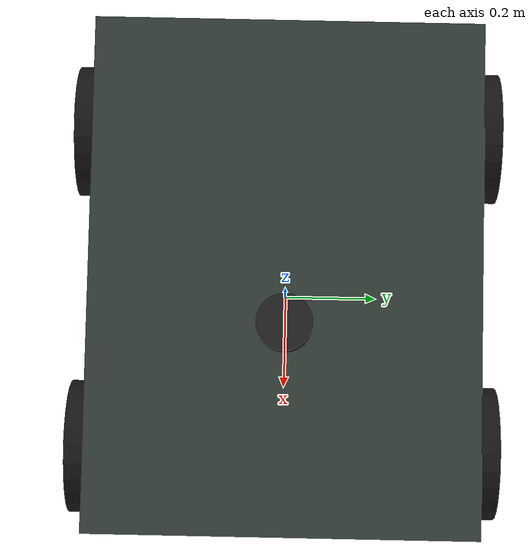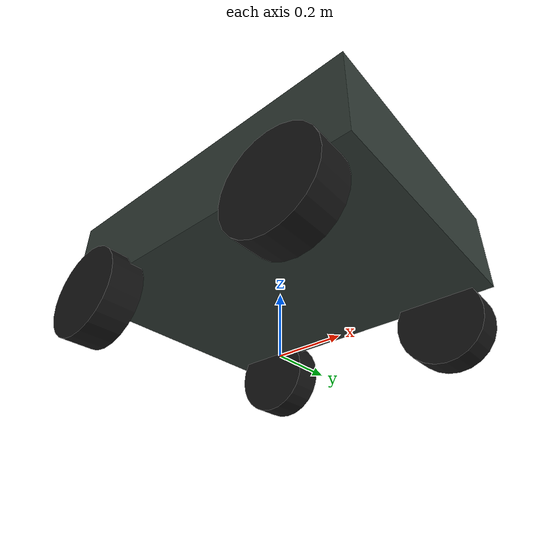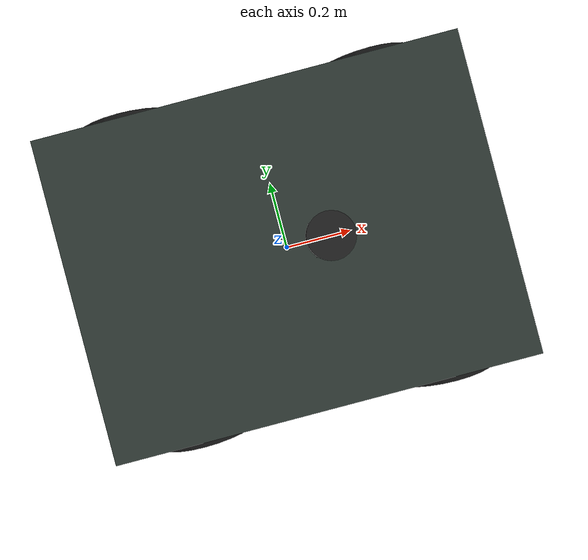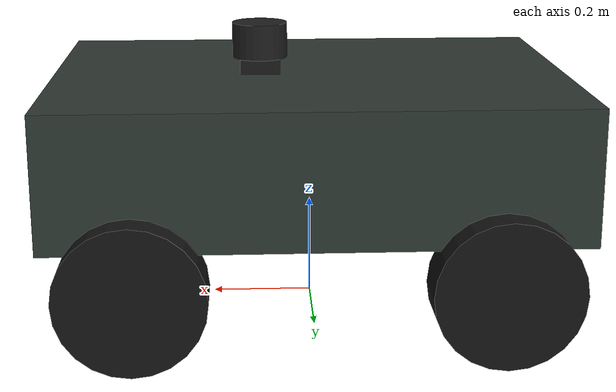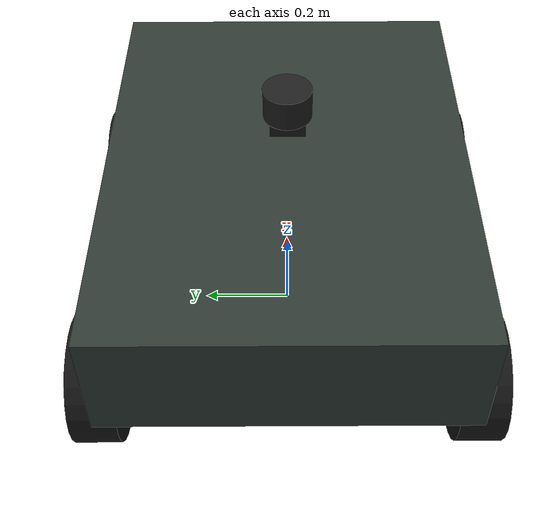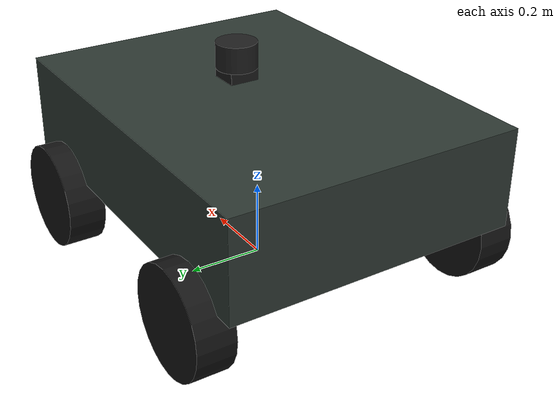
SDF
<?xml version="1.0"?>
<sdf version="1.8">
  <model name="bunker_sim" canonical_link="base_link">
    <!-- SOFTWARE_ONLY proxy. Do not treat these dynamics as field acceptance. -->
    <pose>0 0 0 0 0 0</pose>
    <self_collide>false</self_collide>

    <link name="base_link">
      <pose>0 0 0.34 0 0 0</pose>
      <inertial>
        <mass>100.0</mass>
        <inertia>
          <ixx>8.0</ixx><iyy>10.0</iyy><izz>12.0</izz>
          <ixy>0.0</ixy><ixz>0.0</ixz><iyz>0.0</iyz>
        </inertia>
      </inertial>
      <collision name="collision">
        <geometry><box><size>1.023 0.778 0.26</size></box></geometry>
      </collision>
      <visual name="visual">
        <geometry><box><size>1.023 0.778 0.26</size></box></geometry>
        <material><diffuse>0.18 0.22 0.20 1</diffuse></material>
      </visual>
      <visual name="lidar_mount_visual">
        <pose>0.10 0 0.145 0 0 0</pose>
        <geometry><box><size>0.08 0.08 0.03</size></box></geometry>
        <material><diffuse>0.10 0.10 0.10 1</diffuse></material>
      </visual>
    </link>

    <link name="front_left_wheel">
      <pose>0.34 0.40 0.14 -1.57079632679 0 0</pose>
      <inertial><mass>4.0</mass><inertia><ixx>0.04</ixx><iyy>0.04</iyy><izz>0.04</izz></inertia></inertial>
      <collision name="collision">
        <geometry><cylinder><radius>0.14</radius><length>0.10</length></cylinder></geometry>
        <surface><friction><ode><mu>1.0</mu><mu2>1.0</mu2><slip1>0.02</slip1><slip2>0.02</slip2></ode></friction></surface>
      </collision>
      <visual name="visual"><geometry><cylinder><radius>0.14</radius><length>0.10</length></cylinder></geometry><material><diffuse>0.08 0.08 0.08 1</diffuse></material></visual>
    </link>
    <link name="rear_left_wheel">
      <pose>-0.34 0.40 0.14 -1.57079632679 0 0</pose>
      <inertial><mass>4.0</mass><inertia><ixx>0.04</ixx><iyy>0.04</iyy><izz>0.04</izz></inertia></inertial>
      <collision name="collision">
        <geometry><cylinder><radius>0.14</radius><length>0.10</length></cylinder></geometry>
        <surface><friction><ode><mu>1.0</mu><mu2>1.0</mu2><slip1>0.02</slip1><slip2>0.02</slip2></ode></friction></surface>
      </collision>
      <visual name="visual"><geometry><cylinder><radius>0.14</radius><length>0.10</length></cylinder></geometry><material><diffuse>0.08 0.08 0.08 1</diffuse></material></visual>
    </link>
    <link name="front_right_wheel">
      <pose>0.34 -0.40 0.14 -1.57079632679 0 0</pose>
      <inertial><mass>4.0</mass><inertia><ixx>0.04</ixx><iyy>0.04</iyy><izz>0.04</izz></inertia></inertial>
      <collision name="collision">
        <geometry><cylinder><radius>0.14</radius><length>0.10</length></cylinder></geometry>
        <surface><friction><ode><mu>1.0</mu><mu2>1.0</mu2><slip1>0.02</slip1><slip2>0.02</slip2></ode></friction></surface>
      </collision>
      <visual name="visual"><geometry><cylinder><radius>0.14</radius><length>0.10</length></cylinder></geometry><material><diffuse>0.08 0.08 0.08 1</diffuse></material></visual>
    </link>
    <link name="rear_right_wheel">
      <pose>-0.34 -0.40 0.14 -1.57079632679 0 0</pose>
      <inertial><mass>4.0</mass><inertia><ixx>0.04</ixx><iyy>0.04</iyy><izz>0.04</izz></inertia></inertial>
      <collision name="collision">
        <geometry><cylinder><radius>0.14</radius><length>0.10</length></cylinder></geometry>
        <surface><friction><ode><mu>1.0</mu><mu2>1.0</mu2><slip1>0.02</slip1><slip2>0.02</slip2></ode></friction></surface>
      </collision>
      <visual name="visual"><geometry><cylinder><radius>0.14</radius><length>0.10</length></cylinder></geometry><material><diffuse>0.08 0.08 0.08 1</diffuse></material></visual>
    </link>

    <!-- SDFormat defines a joint pose without @relative_to in the child-link
         frame by default. Keep the axis explicitly expressed in the model frame. -->
    <joint name="front_left_joint" type="revolute">
      <pose/>
      <parent>base_link</parent><child>front_left_wheel</child>
      <axis><xyz expressed_in="__model__">0 1 0</xyz><limit><lower>-1.79769e+308</lower><upper>1.79769e+308</upper></limit></axis>
    </joint>
    <joint name="rear_left_joint" type="revolute">
      <pose/>
      <parent>base_link</parent><child>rear_left_wheel</child>
      <axis><xyz expressed_in="__model__">0 1 0</xyz><limit><lower>-1.79769e+308</lower><upper>1.79769e+308</upper></limit></axis>
    </joint>
    <joint name="front_right_joint" type="revolute">
      <pose/>
      <parent>base_link</parent><child>front_right_wheel</child>
      <axis><xyz expressed_in="__model__">0 1 0</xyz><limit><lower>-1.79769e+308</lower><upper>1.79769e+308</upper></limit></axis>
    </joint>
    <joint name="rear_right_joint" type="revolute">
      <pose/>
      <parent>base_link</parent><child>rear_right_wheel</child>
      <axis><xyz expressed_in="__model__">0 1 0</xyz><limit><lower>-1.79769e+308</lower><upper>1.79769e+308</upper></limit></axis>
    </joint>

    <link name="lidar_link">
      <pose>0.10 0 0.535 0 0 0</pose>
      <visual name="visual">
        <geometry><cylinder><radius>0.055</radius><length>0.07</length></cylinder></geometry>
        <material><diffuse>0.12 0.12 0.12 1</diffuse></material>
      </visual>
      <sensor name="navigation_lidar" type="gpu_lidar">
        <topic>/simulation/bunker/scan</topic>
        <update_rate>10</update_rate>
        <lidar>
          <scan>
            <horizontal>
              <samples>720</samples><resolution>1</resolution>
              <min_angle>-3.14159265359</min_angle><max_angle>3.14159265359</max_angle>
            </horizontal>
          </scan>
          <range><min>0.10</min><max>30.0</max><resolution>0.02</resolution></range>
          <noise><type>gaussian</type><mean>0.0</mean><stddev>0.01</stddev></noise>
        </lidar>
        <always_on>true</always_on>
        <visualize>true</visualize>
      </sensor>
    </link>
    <joint name="lidar_fixed_joint" type="fixed"><parent>base_link</parent><child>lidar_link</child></joint>

    <link name="imu_link">
      <pose>0 0 0.42 0 0 0</pose>
      <sensor name="navigation_imu" type="imu">
        <topic>/simulation/bunker/imu</topic>
        <update_rate>100</update_rate>
        <always_on>true</always_on>
      </sensor>
    </link>
    <joint name="imu_fixed_joint" type="fixed"><parent>base_link</parent><child>imu_link</child></joint>

    <plugin filename="libignition-gazebo-diff-drive-system.so" name="ignition::gazebo::systems::DiffDrive">
      <left_joint>front_left_joint</left_joint>
      <left_joint>rear_left_joint</left_joint>
      <right_joint>front_right_joint</right_joint>
      <right_joint>rear_right_joint</right_joint>
      <wheel_separation>0.80</wheel_separation>
      <wheel_radius>0.14</wheel_radius>
      <topic>/model/bunker_sim/cmd_vel</topic>
      <odom_topic>/model/bunker_sim/odometry</odom_topic>
      <tf_topic>/model/bunker_sim/tf</tf_topic>
      <frame_id>odom</frame_id>
      <child_frame_id>base_footprint</child_frame_id>
      <odom_publish_frequency>30</odom_publish_frequency>
      <max_linear_acceleration>0.8</max_linear_acceleration>
      <max_angular_acceleration>1.0</max_angular_acceleration>
    </plugin>

    <plugin filename="libignition-gazebo-odometry-publisher-system.so" name="ignition::gazebo::systems::OdometryPublisher">
      <odom_frame>world</odom_frame>
      <robot_base_frame>base_link</robot_base_frame>
      <odom_publish_frequency>30</odom_publish_frequency>
      <odom_topic>/model/bunker_sim/ground_truth</odom_topic>
      <tf_topic>/model/bunker_sim/ground_truth_tf</tf_topic>
      <dimensions>2</dimensions>
      <gaussian_noise>0.0</gaussian_noise>
    </plugin>

    <plugin filename="libignition-gazebo-joint-state-publisher-system.so" name="ignition::gazebo::systems::JointStatePublisher"/>
  </model>
</sdf>
